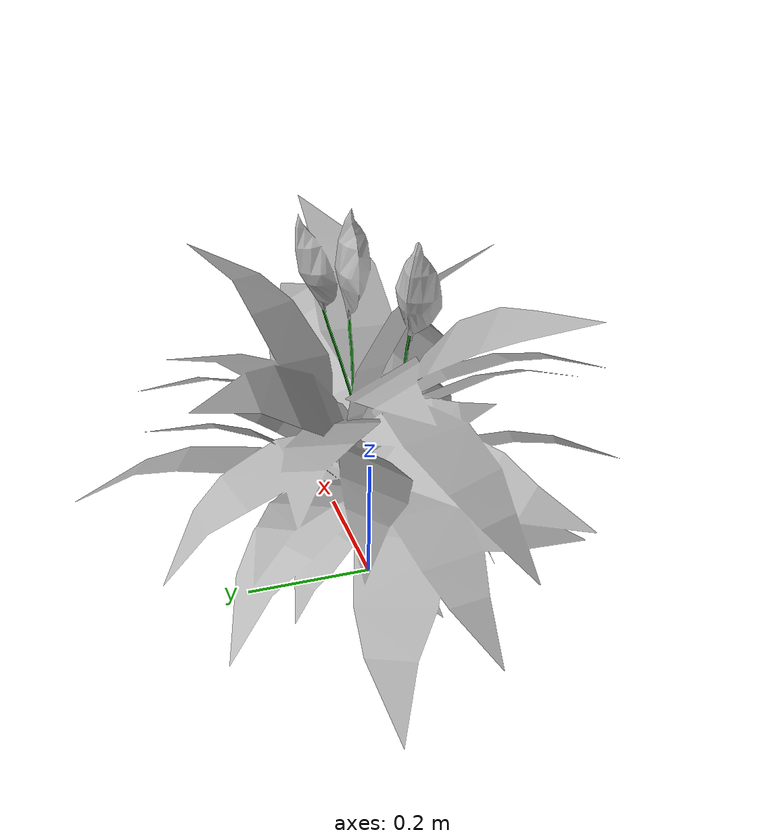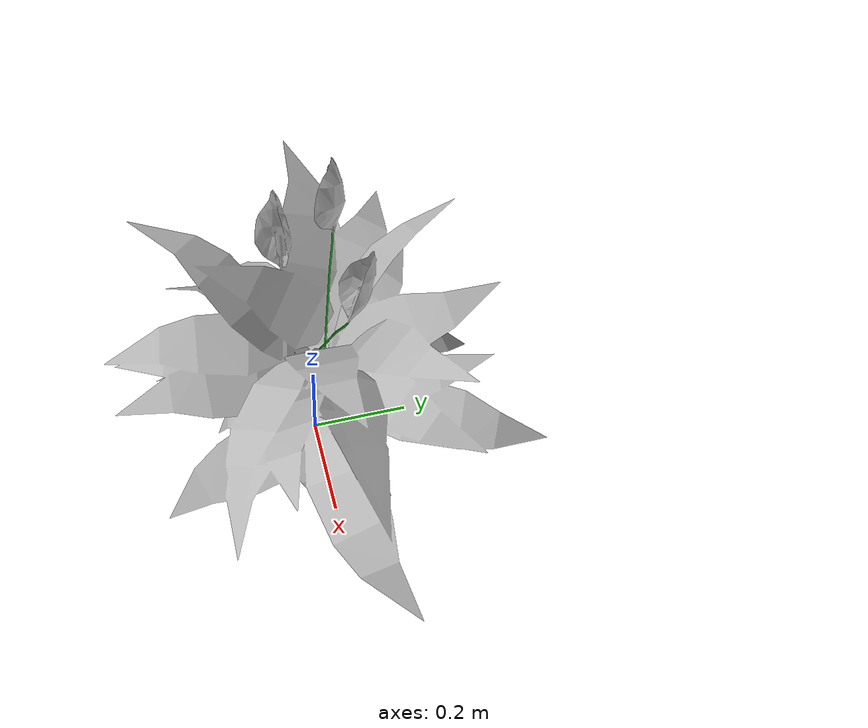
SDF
<?xml version="1.0"?>
<sdf version='1.3'>
	<model name="Spathaphylum">
		<pose>0 0 0 0 0 0</pose>
		<static>true</static>
		<allow_auto_disable>true</allow_auto_disable>
		<link name="link">
			<pose>0 0 0 0 0 0</pose>
			<inertial>
				<mass>10</mass>
				<pose>0 0 0 0 0 0</pose>
				<inertia>
					<ixx>1</ixx>
					<ixy>0</ixy>
					<ixz>0</ixz>
					<iyy>1</iyy>
					<iyz>0</iyz>
					<izz>1</izz>
				</inertia>
			</inertial>
			<visual name="visual">
				<geometry>
					<mesh>
						<uri>model://trees/spathaphylum/meshes/Spathaphylum.dae</uri>
					</mesh>
				</geometry>
			</visual>
		</link>

	</model>
</sdf>
